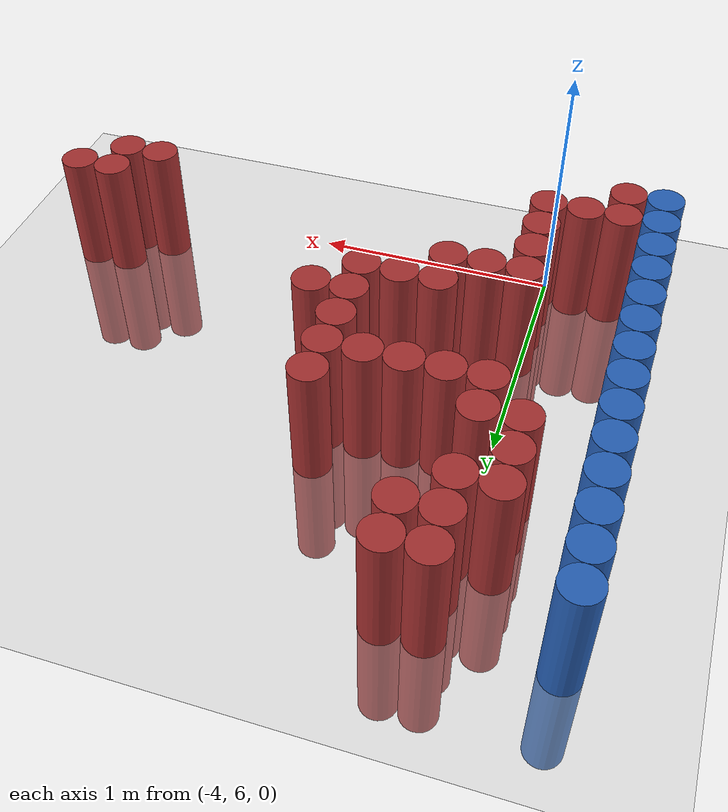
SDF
<sdf version="1.6">
 <world name="default">
  <model name="ground_plane">
   <static>1</static>
   <link name="link">
    <collision name="collision">
     <geometry><plane><normal>0 0 1</normal><size>100 100</size></plane></geometry>
     <surface><friction><ode><mu>100</mu><mu2>50</mu2></ode></friction></surface>
    </collision>
    <visual name="visual">
     <cast_shadows>0</cast_shadows>
     <geometry><plane><normal>0 0 1</normal><size>100 100</size></plane></geometry>
     <material>
      <script><uri>file://media/materials/scripts/gazebo.material</uri><name>Gazebo/Grey</name></script>
     </material>
    </visual>
   </link>
  </model>
  <model name="unit_cylinder_101">
   <static>1</static>
   <pose>-4.425000 5.925000 0.000000 0.000000 0.000000 0.000000</pose>
   <link name="link">
    <inertial>
     <mass>1</mass>
     <inertia><ixx>0.145833</ixx><ixy>0</ixy><ixz>0</ixz><iyy>0.145833</iyy><iyz>0</iyz><izz>0.125</izz></inertia>
    </inertial>
    <collision name="collision">
     <geometry><cylinder><radius>0.075000</radius><length>1</length></cylinder></geometry>
    </collision>
    <visual name="visual">
     <geometry><cylinder><radius>0.075000</radius><length>1</length></cylinder></geometry>
     <material>
      <ambient>0.152000 0.379000 0.720000 1</ambient>
      <diffuse>0.152000 0.379000 0.720000 1</diffuse>
     </material>
     <material>
      <script><name>Gazebo/Grey</name><uri>file://media/materials/scripts/gazebo.material</uri></script>
     </material>
    </visual>
   </link>
  </model>
  <model name="unit_cylinder_102">
   <static>1</static>
   <pose>-4.425000 6.075000 0.000000 0.000000 0.000000 0.000000</pose>
   <link name="link">
    <inertial>
     <mass>1</mass>
     <inertia><ixx>0.145833</ixx><ixy>0</ixy><ixz>0</ixz><iyy>0.145833</iyy><iyz>0</iyz><izz>0.125</izz></inertia>
    </inertial>
    <collision name="collision">
     <geometry><cylinder><radius>0.075000</radius><length>1</length></cylinder></geometry>
    </collision>
    <visual name="visual">
     <geometry><cylinder><radius>0.075000</radius><length>1</length></cylinder></geometry>
     <material>
      <ambient>0.152000 0.379000 0.720000 1</ambient>
      <diffuse>0.152000 0.379000 0.720000 1</diffuse>
     </material>
     <material>
      <script><name>Gazebo/Grey</name><uri>file://media/materials/scripts/gazebo.material</uri></script>
     </material>
    </visual>
   </link>
  </model>
  <model name="unit_cylinder_103">
   <static>1</static>
   <pose>-4.425000 6.225000 0.000000 0.000000 0.000000 0.000000</pose>
   <link name="link">
    <inertial>
     <mass>1</mass>
     <inertia><ixx>0.145833</ixx><ixy>0</ixy><ixz>0</ixz><iyy>0.145833</iyy><iyz>0</iyz><izz>0.125</izz></inertia>
    </inertial>
    <collision name="collision">
     <geometry><cylinder><radius>0.075000</radius><length>1</length></cylinder></geometry>
    </collision>
    <visual name="visual">
     <geometry><cylinder><radius>0.075000</radius><length>1</length></cylinder></geometry>
     <material>
      <ambient>0.152000 0.379000 0.720000 1</ambient>
      <diffuse>0.152000 0.379000 0.720000 1</diffuse>
     </material>
     <material>
      <script><name>Gazebo/Grey</name><uri>file://media/materials/scripts/gazebo.material</uri></script>
     </material>
    </visual>
   </link>
  </model>
  <model name="unit_cylinder_104">
   <static>1</static>
   <pose>-4.425000 6.375000 0.000000 0.000000 0.000000 0.000000</pose>
   <link name="link">
    <inertial>
     <mass>1</mass>
     <inertia><ixx>0.145833</ixx><ixy>0</ixy><ixz>0</ixz><iyy>0.145833</iyy><iyz>0</iyz><izz>0.125</izz></inertia>
    </inertial>
    <collision name="collision">
     <geometry><cylinder><radius>0.075000</radius><length>1</length></cylinder></geometry>
    </collision>
    <visual name="visual">
     <geometry><cylinder><radius>0.075000</radius><length>1</length></cylinder></geometry>
     <material>
      <ambient>0.152000 0.379000 0.720000 1</ambient>
      <diffuse>0.152000 0.379000 0.720000 1</diffuse>
     </material>
     <material>
      <script><name>Gazebo/Grey</name><uri>file://media/materials/scripts/gazebo.material</uri></script>
     </material>
    </visual>
   </link>
  </model>
  <model name="unit_cylinder_105">
   <static>1</static>
   <pose>-4.425000 6.525000 0.000000 0.000000 0.000000 0.000000</pose>
   <link name="link">
    <inertial>
     <mass>1</mass>
     <inertia><ixx>0.145833</ixx><ixy>0</ixy><ixz>0</ixz><iyy>0.145833</iyy><iyz>0</iyz><izz>0.125</izz></inertia>
    </inertial>
    <collision name="collision">
     <geometry><cylinder><radius>0.075000</radius><length>1</length></cylinder></geometry>
    </collision>
    <visual name="visual">
     <geometry><cylinder><radius>0.075000</radius><length>1</length></cylinder></geometry>
     <material>
      <ambient>0.152000 0.379000 0.720000 1</ambient>
      <diffuse>0.152000 0.379000 0.720000 1</diffuse>
     </material>
     <material>
      <script><name>Gazebo/Grey</name><uri>file://media/materials/scripts/gazebo.material</uri></script>
     </material>
    </visual>
   </link>
  </model>
  <model name="unit_cylinder_106">
   <static>1</static>
   <pose>-4.425000 6.675000 0.000000 0.000000 0.000000 0.000000</pose>
   <link name="link">
    <inertial>
     <mass>1</mass>
     <inertia><ixx>0.145833</ixx><ixy>0</ixy><ixz>0</ixz><iyy>0.145833</iyy><iyz>0</iyz><izz>0.125</izz></inertia>
    </inertial>
    <collision name="collision">
     <geometry><cylinder><radius>0.075000</radius><length>1</length></cylinder></geometry>
    </collision>
    <visual name="visual">
     <geometry><cylinder><radius>0.075000</radius><length>1</length></cylinder></geometry>
     <material>
      <ambient>0.152000 0.379000 0.720000 1</ambient>
      <diffuse>0.152000 0.379000 0.720000 1</diffuse>
     </material>
     <material>
      <script><name>Gazebo/Grey</name><uri>file://media/materials/scripts/gazebo.material</uri></script>
     </material>
    </visual>
   </link>
  </model>
  <model name="unit_cylinder_107">
   <static>1</static>
   <pose>-4.425000 6.825000 0.000000 0.000000 0.000000 0.000000</pose>
   <link name="link">
    <inertial>
     <mass>1</mass>
     <inertia><ixx>0.145833</ixx><ixy>0</ixy><ixz>0</ixz><iyy>0.145833</iyy><iyz>0</iyz><izz>0.125</izz></inertia>
    </inertial>
    <collision name="collision">
     <geometry><cylinder><radius>0.075000</radius><length>1</length></cylinder></geometry>
    </collision>
    <visual name="visual">
     <geometry><cylinder><radius>0.075000</radius><length>1</length></cylinder></geometry>
     <material>
      <ambient>0.152000 0.379000 0.720000 1</ambient>
      <diffuse>0.152000 0.379000 0.720000 1</diffuse>
     </material>
     <material>
      <script><name>Gazebo/Grey</name><uri>file://media/materials/scripts/gazebo.material</uri></script>
     </material>
    </visual>
   </link>
  </model>
  <model name="unit_cylinder_108">
   <static>1</static>
   <pose>-4.425000 6.975000 0.000000 0.000000 0.000000 0.000000</pose>
   <link name="link">
    <inertial>
     <mass>1</mass>
     <inertia><ixx>0.145833</ixx><ixy>0</ixy><ixz>0</ixz><iyy>0.145833</iyy><iyz>0</iyz><izz>0.125</izz></inertia>
    </inertial>
    <collision name="collision">
     <geometry><cylinder><radius>0.075000</radius><length>1</length></cylinder></geometry>
    </collision>
    <visual name="visual">
     <geometry><cylinder><radius>0.075000</radius><length>1</length></cylinder></geometry>
     <material>
      <ambient>0.152000 0.379000 0.720000 1</ambient>
      <diffuse>0.152000 0.379000 0.720000 1</diffuse>
     </material>
     <material>
      <script><name>Gazebo/Grey</name><uri>file://media/materials/scripts/gazebo.material</uri></script>
     </material>
    </visual>
   </link>
  </model>
  <model name="unit_cylinder_109">
   <static>1</static>
   <pose>-4.425000 7.125000 0.000000 0.000000 0.000000 0.000000</pose>
   <link name="link">
    <inertial>
     <mass>1</mass>
     <inertia><ixx>0.145833</ixx><ixy>0</ixy><ixz>0</ixz><iyy>0.145833</iyy><iyz>0</iyz><izz>0.125</izz></inertia>
    </inertial>
    <collision name="collision">
     <geometry><cylinder><radius>0.075000</radius><length>1</length></cylinder></geometry>
    </collision>
    <visual name="visual">
     <geometry><cylinder><radius>0.075000</radius><length>1</length></cylinder></geometry>
     <material>
      <ambient>0.152000 0.379000 0.720000 1</ambient>
      <diffuse>0.152000 0.379000 0.720000 1</diffuse>
     </material>
     <material>
      <script><name>Gazebo/Grey</name><uri>file://media/materials/scripts/gazebo.material</uri></script>
     </material>
    </visual>
   </link>
  </model>
  <model name="unit_cylinder_110">
   <static>1</static>
   <pose>-4.425000 7.275000 0.000000 0.000000 0.000000 0.000000</pose>
   <link name="link">
    <inertial>
     <mass>1</mass>
     <inertia><ixx>0.145833</ixx><ixy>0</ixy><ixz>0</ixz><iyy>0.145833</iyy><iyz>0</iyz><izz>0.125</izz></inertia>
    </inertial>
    <collision name="collision">
     <geometry><cylinder><radius>0.075000</radius><length>1</length></cylinder></geometry>
    </collision>
    <visual name="visual">
     <geometry><cylinder><radius>0.075000</radius><length>1</length></cylinder></geometry>
     <material>
      <ambient>0.152000 0.379000 0.720000 1</ambient>
      <diffuse>0.152000 0.379000 0.720000 1</diffuse>
     </material>
     <material>
      <script><name>Gazebo/Grey</name><uri>file://media/materials/scripts/gazebo.material</uri></script>
     </material>
    </visual>
   </link>
  </model>
  <model name="unit_cylinder_111">
   <static>1</static>
   <pose>-4.425000 7.425000 0.000000 0.000000 0.000000 0.000000</pose>
   <link name="link">
    <inertial>
     <mass>1</mass>
     <inertia><ixx>0.145833</ixx><ixy>0</ixy><ixz>0</ixz><iyy>0.145833</iyy><iyz>0</iyz><izz>0.125</izz></inertia>
    </inertial>
    <collision name="collision">
     <geometry><cylinder><radius>0.075000</radius><length>1</length></cylinder></geometry>
    </collision>
    <visual name="visual">
     <geometry><cylinder><radius>0.075000</radius><length>1</length></cylinder></geometry>
     <material>
      <ambient>0.152000 0.379000 0.720000 1</ambient>
      <diffuse>0.152000 0.379000 0.720000 1</diffuse>
     </material>
     <material>
      <script><name>Gazebo/Grey</name><uri>file://media/materials/scripts/gazebo.material</uri></script>
     </material>
    </visual>
   </link>
  </model>
  <model name="unit_cylinder_112">
   <static>1</static>
   <pose>-4.425000 7.575000 0.000000 0.000000 0.000000 0.000000</pose>
   <link name="link">
    <inertial>
     <mass>1</mass>
     <inertia><ixx>0.145833</ixx><ixy>0</ixy><ixz>0</ixz><iyy>0.145833</iyy><iyz>0</iyz><izz>0.125</izz></inertia>
    </inertial>
    <collision name="collision">
     <geometry><cylinder><radius>0.075000</radius><length>1</length></cylinder></geometry>
    </collision>
    <visual name="visual">
     <geometry><cylinder><radius>0.075000</radius><length>1</length></cylinder></geometry>
     <material>
      <ambient>0.152000 0.379000 0.720000 1</ambient>
      <diffuse>0.152000 0.379000 0.720000 1</diffuse>
     </material>
     <material>
      <script><name>Gazebo/Grey</name><uri>file://media/materials/scripts/gazebo.material</uri></script>
     </material>
    </visual>
   </link>
  </model>
  <model name="unit_cylinder_113">
   <static>1</static>
   <pose>-4.425000 7.725000 0.000000 0.000000 0.000000 0.000000</pose>
   <link name="link">
    <inertial>
     <mass>1</mass>
     <inertia><ixx>0.145833</ixx><ixy>0</ixy><ixz>0</ixz><iyy>0.145833</iyy><iyz>0</iyz><izz>0.125</izz></inertia>
    </inertial>
    <collision name="collision">
     <geometry><cylinder><radius>0.075000</radius><length>1</length></cylinder></geometry>
    </collision>
    <visual name="visual">
     <geometry><cylinder><radius>0.075000</radius><length>1</length></cylinder></geometry>
     <material>
      <ambient>0.152000 0.379000 0.720000 1</ambient>
      <diffuse>0.152000 0.379000 0.720000 1</diffuse>
     </material>
     <material>
      <script><name>Gazebo/Grey</name><uri>file://media/materials/scripts/gazebo.material</uri></script>
     </material>
    </visual>
   </link>
  </model>
  <model name="unit_cylinder_114">
   <static>1</static>
   <pose>-4.425000 7.875000 0.000000 0.000000 0.000000 0.000000</pose>
   <link name="link">
    <inertial>
     <mass>1</mass>
     <inertia><ixx>0.145833</ixx><ixy>0</ixy><ixz>0</ixz><iyy>0.145833</iyy><iyz>0</iyz><izz>0.125</izz></inertia>
    </inertial>
    <collision name="collision">
     <geometry><cylinder><radius>0.075000</radius><length>1</length></cylinder></geometry>
    </collision>
    <visual name="visual">
     <geometry><cylinder><radius>0.075000</radius><length>1</length></cylinder></geometry>
     <material>
      <ambient>0.152000 0.379000 0.720000 1</ambient>
      <diffuse>0.152000 0.379000 0.720000 1</diffuse>
     </material>
     <material>
      <script><name>Gazebo/Grey</name><uri>file://media/materials/scripts/gazebo.material</uri></script>
     </material>
    </visual>
   </link>
  </model>
  <model name="unit_cylinder_129">
   <static>1</static>
   <pose>-4.275000 5.925000 0.000000 0.000000 0.000000 0.000000</pose>
   <link name="link">
    <inertial>
     <mass>1</mass>
     <inertia><ixx>0.145833</ixx><ixy>0</ixy><ixz>0</ixz><iyy>0.145833</iyy><iyz>0</iyz><izz>0.125</izz></inertia>
    </inertial>
    <collision name="collision">
     <geometry><cylinder><radius>0.075000</radius><length>1</length></cylinder></geometry>
    </collision>
    <visual name="visual">
     <geometry><cylinder><radius>0.075000</radius><length>1</length></cylinder></geometry>
     <material>
      <ambient>0.648000 0.192000 0.192000 1</ambient>
      <diffuse>0.648000 0.192000 0.192000 1</diffuse>
     </material>
     <material>
      <script><name>Gazebo/Grey</name><uri>file://media/materials/scripts/gazebo.material</uri></script>
     </material>
    </visual>
   </link>
  </model>
  <model name="unit_cylinder_130">
   <static>1</static>
   <pose>-4.275000 6.075000 0.000000 0.000000 0.000000 0.000000</pose>
   <link name="link">
    <inertial>
     <mass>1</mass>
     <inertia><ixx>0.145833</ixx><ixy>0</ixy><ixz>0</ixz><iyy>0.145833</iyy><iyz>0</iyz><izz>0.125</izz></inertia>
    </inertial>
    <collision name="collision">
     <geometry><cylinder><radius>0.075000</radius><length>1</length></cylinder></geometry>
    </collision>
    <visual name="visual">
     <geometry><cylinder><radius>0.075000</radius><length>1</length></cylinder></geometry>
     <material>
      <ambient>0.648000 0.192000 0.192000 1</ambient>
      <diffuse>0.648000 0.192000 0.192000 1</diffuse>
     </material>
     <material>
      <script><name>Gazebo/Grey</name><uri>file://media/materials/scripts/gazebo.material</uri></script>
     </material>
    </visual>
   </link>
  </model>
  <model name="unit_cylinder_136">
   <static>1</static>
   <pose>-4.125000 6.075000 0.000000 0.000000 0.000000 0.000000</pose>
   <link name="link">
    <inertial>
     <mass>1</mass>
     <inertia><ixx>0.145833</ixx><ixy>0</ixy><ixz>0</ixz><iyy>0.145833</iyy><iyz>0</iyz><izz>0.125</izz></inertia>
    </inertial>
    <collision name="collision">
     <geometry><cylinder><radius>0.075000</radius><length>1</length></cylinder></geometry>
    </collision>
    <visual name="visual">
     <geometry><cylinder><radius>0.075000</radius><length>1</length></cylinder></geometry>
     <material>
      <ambient>0.648000 0.192000 0.192000 1</ambient>
      <diffuse>0.648000 0.192000 0.192000 1</diffuse>
     </material>
     <material>
      <script><name>Gazebo/Grey</name><uri>file://media/materials/scripts/gazebo.material</uri></script>
     </material>
    </visual>
   </link>
  </model>
  <model name="unit_cylinder_137">
   <static>1</static>
   <pose>-4.125000 7.275000 0.000000 0.000000 0.000000 0.000000</pose>
   <link name="link">
    <inertial>
     <mass>1</mass>
     <inertia><ixx>0.145833</ixx><ixy>0</ixy><ixz>0</ixz><iyy>0.145833</iyy><iyz>0</iyz><izz>0.125</izz></inertia>
    </inertial>
    <collision name="collision">
     <geometry><cylinder><radius>0.075000</radius><length>1</length></cylinder></geometry>
    </collision>
    <visual name="visual">
     <geometry><cylinder><radius>0.075000</radius><length>1</length></cylinder></geometry>
     <material>
      <ambient>0.648000 0.192000 0.192000 1</ambient>
      <diffuse>0.648000 0.192000 0.192000 1</diffuse>
     </material>
     <material>
      <script><name>Gazebo/Grey</name><uri>file://media/materials/scripts/gazebo.material</uri></script>
     </material>
    </visual>
   </link>
  </model>
  <model name="unit_cylinder_138">
   <static>1</static>
   <pose>-4.125000 7.425000 0.000000 0.000000 0.000000 0.000000</pose>
   <link name="link">
    <inertial>
     <mass>1</mass>
     <inertia><ixx>0.145833</ixx><ixy>0</ixy><ixz>0</ixz><iyy>0.145833</iyy><iyz>0</iyz><izz>0.125</izz></inertia>
    </inertial>
    <collision name="collision">
     <geometry><cylinder><radius>0.075000</radius><length>1</length></cylinder></geometry>
    </collision>
    <visual name="visual">
     <geometry><cylinder><radius>0.075000</radius><length>1</length></cylinder></geometry>
     <material>
      <ambient>0.648000 0.192000 0.192000 1</ambient>
      <diffuse>0.648000 0.192000 0.192000 1</diffuse>
     </material>
     <material>
      <script><name>Gazebo/Grey</name><uri>file://media/materials/scripts/gazebo.material</uri></script>
     </material>
    </visual>
   </link>
  </model>
  <model name="unit_cylinder_139">
   <static>1</static>
   <pose>-4.125000 7.575000 0.000000 0.000000 0.000000 0.000000</pose>
   <link name="link">
    <inertial>
     <mass>1</mass>
     <inertia><ixx>0.145833</ixx><ixy>0</ixy><ixz>0</ixz><iyy>0.145833</iyy><iyz>0</iyz><izz>0.125</izz></inertia>
    </inertial>
    <collision name="collision">
     <geometry><cylinder><radius>0.075000</radius><length>1</length></cylinder></geometry>
    </collision>
    <visual name="visual">
     <geometry><cylinder><radius>0.075000</radius><length>1</length></cylinder></geometry>
     <material>
      <ambient>0.648000 0.192000 0.192000 1</ambient>
      <diffuse>0.648000 0.192000 0.192000 1</diffuse>
     </material>
     <material>
      <script><name>Gazebo/Grey</name><uri>file://media/materials/scripts/gazebo.material</uri></script>
     </material>
    </visual>
   </link>
  </model>
  <model name="unit_cylinder_144">
   <static>1</static>
   <pose>-3.975000 6.075000 0.000000 0.000000 0.000000 0.000000</pose>
   <link name="link">
    <inertial>
     <mass>1</mass>
     <inertia><ixx>0.145833</ixx><ixy>0</ixy><ixz>0</ixz><iyy>0.145833</iyy><iyz>0</iyz><izz>0.125</izz></inertia>
    </inertial>
    <collision name="collision">
     <geometry><cylinder><radius>0.075000</radius><length>1</length></cylinder></geometry>
    </collision>
    <visual name="visual">
     <geometry><cylinder><radius>0.075000</radius><length>1</length></cylinder></geometry>
     <material>
      <ambient>0.648000 0.192000 0.192000 1</ambient>
      <diffuse>0.648000 0.192000 0.192000 1</diffuse>
     </material>
     <material>
      <script><name>Gazebo/Grey</name><uri>file://media/materials/scripts/gazebo.material</uri></script>
     </material>
    </visual>
   </link>
  </model>
  <model name="unit_cylinder_145">
   <static>1</static>
   <pose>-3.975000 6.225000 0.000000 0.000000 0.000000 0.000000</pose>
   <link name="link">
    <inertial>
     <mass>1</mass>
     <inertia><ixx>0.145833</ixx><ixy>0</ixy><ixz>0</ixz><iyy>0.145833</iyy><iyz>0</iyz><izz>0.125</izz></inertia>
    </inertial>
    <collision name="collision">
     <geometry><cylinder><radius>0.075000</radius><length>1</length></cylinder></geometry>
    </collision>
    <visual name="visual">
     <geometry><cylinder><radius>0.075000</radius><length>1</length></cylinder></geometry>
     <material>
      <ambient>0.648000 0.192000 0.192000 1</ambient>
      <diffuse>0.648000 0.192000 0.192000 1</diffuse>
     </material>
     <material>
      <script><name>Gazebo/Grey</name><uri>file://media/materials/scripts/gazebo.material</uri></script>
     </material>
    </visual>
   </link>
  </model>
  <model name="unit_cylinder_146">
   <static>1</static>
   <pose>-3.975000 6.375000 0.000000 0.000000 0.000000 0.000000</pose>
   <link name="link">
    <inertial>
     <mass>1</mass>
     <inertia><ixx>0.145833</ixx><ixy>0</ixy><ixz>0</ixz><iyy>0.145833</iyy><iyz>0</iyz><izz>0.125</izz></inertia>
    </inertial>
    <collision name="collision">
     <geometry><cylinder><radius>0.075000</radius><length>1</length></cylinder></geometry>
    </collision>
    <visual name="visual">
     <geometry><cylinder><radius>0.075000</radius><length>1</length></cylinder></geometry>
     <material>
      <ambient>0.648000 0.192000 0.192000 1</ambient>
      <diffuse>0.648000 0.192000 0.192000 1</diffuse>
     </material>
     <material>
      <script><name>Gazebo/Grey</name><uri>file://media/materials/scripts/gazebo.material</uri></script>
     </material>
    </visual>
   </link>
  </model>
  <model name="unit_cylinder_147">
   <static>1</static>
   <pose>-3.975000 6.525000 0.000000 0.000000 0.000000 0.000000</pose>
   <link name="link">
    <inertial>
     <mass>1</mass>
     <inertia><ixx>0.145833</ixx><ixy>0</ixy><ixz>0</ixz><iyy>0.145833</iyy><iyz>0</iyz><izz>0.125</izz></inertia>
    </inertial>
    <collision name="collision">
     <geometry><cylinder><radius>0.075000</radius><length>1</length></cylinder></geometry>
    </collision>
    <visual name="visual">
     <geometry><cylinder><radius>0.075000</radius><length>1</length></cylinder></geometry>
     <material>
      <ambient>0.648000 0.192000 0.192000 1</ambient>
      <diffuse>0.648000 0.192000 0.192000 1</diffuse>
     </material>
     <material>
      <script><name>Gazebo/Grey</name><uri>file://media/materials/scripts/gazebo.material</uri></script>
     </material>
    </visual>
   </link>
  </model>
  <model name="unit_cylinder_148">
   <static>1</static>
   <pose>-3.975000 7.125000 0.000000 0.000000 0.000000 0.000000</pose>
   <link name="link">
    <inertial>
     <mass>1</mass>
     <inertia><ixx>0.145833</ixx><ixy>0</ixy><ixz>0</ixz><iyy>0.145833</iyy><iyz>0</iyz><izz>0.125</izz></inertia>
    </inertial>
    <collision name="collision">
     <geometry><cylinder><radius>0.075000</radius><length>1</length></cylinder></geometry>
    </collision>
    <visual name="visual">
     <geometry><cylinder><radius>0.075000</radius><length>1</length></cylinder></geometry>
     <material>
      <ambient>0.648000 0.192000 0.192000 1</ambient>
      <diffuse>0.648000 0.192000 0.192000 1</diffuse>
     </material>
     <material>
      <script><name>Gazebo/Grey</name><uri>file://media/materials/scripts/gazebo.material</uri></script>
     </material>
    </visual>
   </link>
  </model>
  <model name="unit_cylinder_149">
   <static>1</static>
   <pose>-3.975000 7.275000 0.000000 0.000000 0.000000 0.000000</pose>
   <link name="link">
    <inertial>
     <mass>1</mass>
     <inertia><ixx>0.145833</ixx><ixy>0</ixy><ixz>0</ixz><iyy>0.145833</iyy><iyz>0</iyz><izz>0.125</izz></inertia>
    </inertial>
    <collision name="collision">
     <geometry><cylinder><radius>0.075000</radius><length>1</length></cylinder></geometry>
    </collision>
    <visual name="visual">
     <geometry><cylinder><radius>0.075000</radius><length>1</length></cylinder></geometry>
     <material>
      <ambient>0.648000 0.192000 0.192000 1</ambient>
      <diffuse>0.648000 0.192000 0.192000 1</diffuse>
     </material>
     <material>
      <script><name>Gazebo/Grey</name><uri>file://media/materials/scripts/gazebo.material</uri></script>
     </material>
    </visual>
   </link>
  </model>
  <model name="unit_cylinder_150">
   <static>1</static>
   <pose>-3.975000 7.575000 0.000000 0.000000 0.000000 0.000000</pose>
   <link name="link">
    <inertial>
     <mass>1</mass>
     <inertia><ixx>0.145833</ixx><ixy>0</ixy><ixz>0</ixz><iyy>0.145833</iyy><iyz>0</iyz><izz>0.125</izz></inertia>
    </inertial>
    <collision name="collision">
     <geometry><cylinder><radius>0.075000</radius><length>1</length></cylinder></geometry>
    </collision>
    <visual name="visual">
     <geometry><cylinder><radius>0.075000</radius><length>1</length></cylinder></geometry>
     <material>
      <ambient>0.648000 0.192000 0.192000 1</ambient>
      <diffuse>0.648000 0.192000 0.192000 1</diffuse>
     </material>
     <material>
      <script><name>Gazebo/Grey</name><uri>file://media/materials/scripts/gazebo.material</uri></script>
     </material>
    </visual>
   </link>
  </model>
  <model name="unit_cylinder_151">
   <static>1</static>
   <pose>-3.975000 7.725000 0.000000 0.000000 0.000000 0.000000</pose>
   <link name="link">
    <inertial>
     <mass>1</mass>
     <inertia><ixx>0.145833</ixx><ixy>0</ixy><ixz>0</ixz><iyy>0.145833</iyy><iyz>0</iyz><izz>0.125</izz></inertia>
    </inertial>
    <collision name="collision">
     <geometry><cylinder><radius>0.075000</radius><length>1</length></cylinder></geometry>
    </collision>
    <visual name="visual">
     <geometry><cylinder><radius>0.075000</radius><length>1</length></cylinder></geometry>
     <material>
      <ambient>0.648000 0.192000 0.192000 1</ambient>
      <diffuse>0.648000 0.192000 0.192000 1</diffuse>
     </material>
     <material>
      <script><name>Gazebo/Grey</name><uri>file://media/materials/scripts/gazebo.material</uri></script>
     </material>
    </visual>
   </link>
  </model>
  <model name="unit_cylinder_152">
   <static>1</static>
   <pose>-3.975000 7.875000 0.000000 0.000000 0.000000 0.000000</pose>
   <link name="link">
    <inertial>
     <mass>1</mass>
     <inertia><ixx>0.145833</ixx><ixy>0</ixy><ixz>0</ixz><iyy>0.145833</iyy><iyz>0</iyz><izz>0.125</izz></inertia>
    </inertial>
    <collision name="collision">
     <geometry><cylinder><radius>0.075000</radius><length>1</length></cylinder></geometry>
    </collision>
    <visual name="visual">
     <geometry><cylinder><radius>0.075000</radius><length>1</length></cylinder></geometry>
     <material>
      <ambient>0.648000 0.192000 0.192000 1</ambient>
      <diffuse>0.648000 0.192000 0.192000 1</diffuse>
     </material>
     <material>
      <script><name>Gazebo/Grey</name><uri>file://media/materials/scripts/gazebo.material</uri></script>
     </material>
    </visual>
   </link>
  </model>
  <model name="unit_cylinder_161">
   <static>1</static>
   <pose>-3.825000 6.525000 0.000000 0.000000 0.000000 0.000000</pose>
   <link name="link">
    <inertial>
     <mass>1</mass>
     <inertia><ixx>0.145833</ixx><ixy>0</ixy><ixz>0</ixz><iyy>0.145833</iyy><iyz>0</iyz><izz>0.125</izz></inertia>
    </inertial>
    <collision name="collision">
     <geometry><cylinder><radius>0.075000</radius><length>1</length></cylinder></geometry>
    </collision>
    <visual name="visual">
     <geometry><cylinder><radius>0.075000</radius><length>1</length></cylinder></geometry>
     <material>
      <ambient>0.648000 0.192000 0.192000 1</ambient>
      <diffuse>0.648000 0.192000 0.192000 1</diffuse>
     </material>
     <material>
      <script><name>Gazebo/Grey</name><uri>file://media/materials/scripts/gazebo.material</uri></script>
     </material>
    </visual>
   </link>
  </model>
  <model name="unit_cylinder_162">
   <static>1</static>
   <pose>-3.825000 7.125000 0.000000 0.000000 0.000000 0.000000</pose>
   <link name="link">
    <inertial>
     <mass>1</mass>
     <inertia><ixx>0.145833</ixx><ixy>0</ixy><ixz>0</ixz><iyy>0.145833</iyy><iyz>0</iyz><izz>0.125</izz></inertia>
    </inertial>
    <collision name="collision">
     <geometry><cylinder><radius>0.075000</radius><length>1</length></cylinder></geometry>
    </collision>
    <visual name="visual">
     <geometry><cylinder><radius>0.075000</radius><length>1</length></cylinder></geometry>
     <material>
      <ambient>0.648000 0.192000 0.192000 1</ambient>
      <diffuse>0.648000 0.192000 0.192000 1</diffuse>
     </material>
     <material>
      <script><name>Gazebo/Grey</name><uri>file://media/materials/scripts/gazebo.material</uri></script>
     </material>
    </visual>
   </link>
  </model>
  <model name="unit_cylinder_163">
   <static>1</static>
   <pose>-3.825000 7.725000 0.000000 0.000000 0.000000 0.000000</pose>
   <link name="link">
    <inertial>
     <mass>1</mass>
     <inertia><ixx>0.145833</ixx><ixy>0</ixy><ixz>0</ixz><iyy>0.145833</iyy><iyz>0</iyz><izz>0.125</izz></inertia>
    </inertial>
    <collision name="collision">
     <geometry><cylinder><radius>0.075000</radius><length>1</length></cylinder></geometry>
    </collision>
    <visual name="visual">
     <geometry><cylinder><radius>0.075000</radius><length>1</length></cylinder></geometry>
     <material>
      <ambient>0.648000 0.192000 0.192000 1</ambient>
      <diffuse>0.648000 0.192000 0.192000 1</diffuse>
     </material>
     <material>
      <script><name>Gazebo/Grey</name><uri>file://media/materials/scripts/gazebo.material</uri></script>
     </material>
    </visual>
   </link>
  </model>
  <model name="unit_cylinder_164">
   <static>1</static>
   <pose>-3.825000 7.875000 0.000000 0.000000 0.000000 0.000000</pose>
   <link name="link">
    <inertial>
     <mass>1</mass>
     <inertia><ixx>0.145833</ixx><ixy>0</ixy><ixz>0</ixz><iyy>0.145833</iyy><iyz>0</iyz><izz>0.125</izz></inertia>
    </inertial>
    <collision name="collision">
     <geometry><cylinder><radius>0.075000</radius><length>1</length></cylinder></geometry>
    </collision>
    <visual name="visual">
     <geometry><cylinder><radius>0.075000</radius><length>1</length></cylinder></geometry>
     <material>
      <ambient>0.648000 0.192000 0.192000 1</ambient>
      <diffuse>0.648000 0.192000 0.192000 1</diffuse>
     </material>
     <material>
      <script><name>Gazebo/Grey</name><uri>file://media/materials/scripts/gazebo.material</uri></script>
     </material>
    </visual>
   </link>
  </model>
  <model name="unit_cylinder_172">
   <static>1</static>
   <pose>-3.675000 6.525000 0.000000 0.000000 0.000000 0.000000</pose>
   <link name="link">
    <inertial>
     <mass>1</mass>
     <inertia><ixx>0.145833</ixx><ixy>0</ixy><ixz>0</ixz><iyy>0.145833</iyy><iyz>0</iyz><izz>0.125</izz></inertia>
    </inertial>
    <collision name="collision">
     <geometry><cylinder><radius>0.075000</radius><length>1</length></cylinder></geometry>
    </collision>
    <visual name="visual">
     <geometry><cylinder><radius>0.075000</radius><length>1</length></cylinder></geometry>
     <material>
      <ambient>0.648000 0.192000 0.192000 1</ambient>
      <diffuse>0.648000 0.192000 0.192000 1</diffuse>
     </material>
     <material>
      <script><name>Gazebo/Grey</name><uri>file://media/materials/scripts/gazebo.material</uri></script>
     </material>
    </visual>
   </link>
  </model>
  <model name="unit_cylinder_173">
   <static>1</static>
   <pose>-3.675000 6.675000 0.000000 0.000000 0.000000 0.000000</pose>
   <link name="link">
    <inertial>
     <mass>1</mass>
     <inertia><ixx>0.145833</ixx><ixy>0</ixy><ixz>0</ixz><iyy>0.145833</iyy><iyz>0</iyz><izz>0.125</izz></inertia>
    </inertial>
    <collision name="collision">
     <geometry><cylinder><radius>0.075000</radius><length>1</length></cylinder></geometry>
    </collision>
    <visual name="visual">
     <geometry><cylinder><radius>0.075000</radius><length>1</length></cylinder></geometry>
     <material>
      <ambient>0.648000 0.192000 0.192000 1</ambient>
      <diffuse>0.648000 0.192000 0.192000 1</diffuse>
     </material>
     <material>
      <script><name>Gazebo/Grey</name><uri>file://media/materials/scripts/gazebo.material</uri></script>
     </material>
    </visual>
   </link>
  </model>
  <model name="unit_cylinder_174">
   <static>1</static>
   <pose>-3.675000 7.125000 0.000000 0.000000 0.000000 0.000000</pose>
   <link name="link">
    <inertial>
     <mass>1</mass>
     <inertia><ixx>0.145833</ixx><ixy>0</ixy><ixz>0</ixz><iyy>0.145833</iyy><iyz>0</iyz><izz>0.125</izz></inertia>
    </inertial>
    <collision name="collision">
     <geometry><cylinder><radius>0.075000</radius><length>1</length></cylinder></geometry>
    </collision>
    <visual name="visual">
     <geometry><cylinder><radius>0.075000</radius><length>1</length></cylinder></geometry>
     <material>
      <ambient>0.648000 0.192000 0.192000 1</ambient>
      <diffuse>0.648000 0.192000 0.192000 1</diffuse>
     </material>
     <material>
      <script><name>Gazebo/Grey</name><uri>file://media/materials/scripts/gazebo.material</uri></script>
     </material>
    </visual>
   </link>
  </model>
  <model name="unit_cylinder_178">
   <static>1</static>
   <pose>-3.525000 6.675000 0.000000 0.000000 0.000000 0.000000</pose>
   <link name="link">
    <inertial>
     <mass>1</mass>
     <inertia><ixx>0.145833</ixx><ixy>0</ixy><ixz>0</ixz><iyy>0.145833</iyy><iyz>0</iyz><izz>0.125</izz></inertia>
    </inertial>
    <collision name="collision">
     <geometry><cylinder><radius>0.075000</radius><length>1</length></cylinder></geometry>
    </collision>
    <visual name="visual">
     <geometry><cylinder><radius>0.075000</radius><length>1</length></cylinder></geometry>
     <material>
      <ambient>0.648000 0.192000 0.192000 1</ambient>
      <diffuse>0.648000 0.192000 0.192000 1</diffuse>
     </material>
     <material>
      <script><name>Gazebo/Grey</name><uri>file://media/materials/scripts/gazebo.material</uri></script>
     </material>
    </visual>
   </link>
  </model>
  <model name="unit_cylinder_179">
   <static>1</static>
   <pose>-3.525000 7.125000 0.000000 0.000000 0.000000 0.000000</pose>
   <link name="link">
    <inertial>
     <mass>1</mass>
     <inertia><ixx>0.145833</ixx><ixy>0</ixy><ixz>0</ixz><iyy>0.145833</iyy><iyz>0</iyz><izz>0.125</izz></inertia>
    </inertial>
    <collision name="collision">
     <geometry><cylinder><radius>0.075000</radius><length>1</length></cylinder></geometry>
    </collision>
    <visual name="visual">
     <geometry><cylinder><radius>0.075000</radius><length>1</length></cylinder></geometry>
     <material>
      <ambient>0.648000 0.192000 0.192000 1</ambient>
      <diffuse>0.648000 0.192000 0.192000 1</diffuse>
     </material>
     <material>
      <script><name>Gazebo/Grey</name><uri>file://media/materials/scripts/gazebo.material</uri></script>
     </material>
    </visual>
   </link>
  </model>
  <model name="unit_cylinder_180">
   <static>1</static>
   <pose>-3.375000 6.675000 0.000000 0.000000 0.000000 0.000000</pose>
   <link name="link">
    <inertial>
     <mass>1</mass>
     <inertia><ixx>0.145833</ixx><ixy>0</ixy><ixz>0</ixz><iyy>0.145833</iyy><iyz>0</iyz><izz>0.125</izz></inertia>
    </inertial>
    <collision name="collision">
     <geometry><cylinder><radius>0.075000</radius><length>1</length></cylinder></geometry>
    </collision>
    <visual name="visual">
     <geometry><cylinder><radius>0.075000</radius><length>1</length></cylinder></geometry>
     <material>
      <ambient>0.648000 0.192000 0.192000 1</ambient>
      <diffuse>0.648000 0.192000 0.192000 1</diffuse>
     </material>
     <material>
      <script><name>Gazebo/Grey</name><uri>file://media/materials/scripts/gazebo.material</uri></script>
     </material>
    </visual>
   </link>
  </model>
  <model name="unit_cylinder_181">
   <static>1</static>
   <pose>-3.375000 6.825000 0.000000 0.000000 0.000000 0.000000</pose>
   <link name="link">
    <inertial>
     <mass>1</mass>
     <inertia><ixx>0.145833</ixx><ixy>0</ixy><ixz>0</ixz><iyy>0.145833</iyy><iyz>0</iyz><izz>0.125</izz></inertia>
    </inertial>
    <collision name="collision">
     <geometry><cylinder><radius>0.075000</radius><length>1</length></cylinder></geometry>
    </collision>
    <visual name="visual">
     <geometry><cylinder><radius>0.075000</radius><length>1</length></cylinder></geometry>
     <material>
      <ambient>0.648000 0.192000 0.192000 1</ambient>
      <diffuse>0.648000 0.192000 0.192000 1</diffuse>
     </material>
     <material>
      <script><name>Gazebo/Grey</name><uri>file://media/materials/scripts/gazebo.material</uri></script>
     </material>
    </visual>
   </link>
  </model>
  <model name="unit_cylinder_182">
   <static>1</static>
   <pose>-3.375000 6.975000 0.000000 0.000000 0.000000 0.000000</pose>
   <link name="link">
    <inertial>
     <mass>1</mass>
     <inertia><ixx>0.145833</ixx><ixy>0</ixy><ixz>0</ixz><iyy>0.145833</iyy><iyz>0</iyz><izz>0.125</izz></inertia>
    </inertial>
    <collision name="collision">
     <geometry><cylinder><radius>0.075000</radius><length>1</length></cylinder></geometry>
    </collision>
    <visual name="visual">
     <geometry><cylinder><radius>0.075000</radius><length>1</length></cylinder></geometry>
     <material>
      <ambient>0.648000 0.192000 0.192000 1</ambient>
      <diffuse>0.648000 0.192000 0.192000 1</diffuse>
     </material>
     <material>
      <script><name>Gazebo/Grey</name><uri>file://media/materials/scripts/gazebo.material</uri></script>
     </material>
    </visual>
   </link>
  </model>
  <model name="unit_cylinder_183">
   <static>1</static>
   <pose>-3.375000 7.125000 0.000000 0.000000 0.000000 0.000000</pose>
   <link name="link">
    <inertial>
     <mass>1</mass>
     <inertia><ixx>0.145833</ixx><ixy>0</ixy><ixz>0</ixz><iyy>0.145833</iyy><iyz>0</iyz><izz>0.125</izz></inertia>
    </inertial>
    <collision name="collision">
     <geometry><cylinder><radius>0.075000</radius><length>1</length></cylinder></geometry>
    </collision>
    <visual name="visual">
     <geometry><cylinder><radius>0.075000</radius><length>1</length></cylinder></geometry>
     <material>
      <ambient>0.648000 0.192000 0.192000 1</ambient>
      <diffuse>0.648000 0.192000 0.192000 1</diffuse>
     </material>
     <material>
      <script><name>Gazebo/Grey</name><uri>file://media/materials/scripts/gazebo.material</uri></script>
     </material>
    </visual>
   </link>
  </model>
  <model name="unit_cylinder_184">
   <static>1</static>
   <pose>-3.375000 7.275000 0.000000 0.000000 0.000000 0.000000</pose>
   <link name="link">
    <inertial>
     <mass>1</mass>
     <inertia><ixx>0.145833</ixx><ixy>0</ixy><ixz>0</ixz><iyy>0.145833</iyy><iyz>0</iyz><izz>0.125</izz></inertia>
    </inertial>
    <collision name="collision">
     <geometry><cylinder><radius>0.075000</radius><length>1</length></cylinder></geometry>
    </collision>
    <visual name="visual">
     <geometry><cylinder><radius>0.075000</radius><length>1</length></cylinder></geometry>
     <material>
      <ambient>0.648000 0.192000 0.192000 1</ambient>
      <diffuse>0.648000 0.192000 0.192000 1</diffuse>
     </material>
     <material>
      <script><name>Gazebo/Grey</name><uri>file://media/materials/scripts/gazebo.material</uri></script>
     </material>
    </visual>
   </link>
  </model>
  <model name="unit_cylinder_185">
   <static>1</static>
   <pose>-3.225000 6.825000 0.000000 0.000000 0.000000 0.000000</pose>
   <link name="link">
    <inertial>
     <mass>1</mass>
     <inertia><ixx>0.145833</ixx><ixy>0</ixy><ixz>0</ixz><iyy>0.145833</iyy><iyz>0</iyz><izz>0.125</izz></inertia>
    </inertial>
    <collision name="collision">
     <geometry><cylinder><radius>0.075000</radius><length>1</length></cylinder></geometry>
    </collision>
    <visual name="visual">
     <geometry><cylinder><radius>0.075000</radius><length>1</length></cylinder></geometry>
     <material>
      <ambient>0.648000 0.192000 0.192000 1</ambient>
      <diffuse>0.648000 0.192000 0.192000 1</diffuse>
     </material>
     <material>
      <script><name>Gazebo/Grey</name><uri>file://media/materials/scripts/gazebo.material</uri></script>
     </material>
    </visual>
   </link>
  </model>
  <model name="unit_cylinder_192">
   <static>1</static>
   <pose>-2.325000 6.225000 0.000000 0.000000 0.000000 0.000000</pose>
   <link name="link">
    <inertial>
     <mass>1</mass>
     <inertia><ixx>0.145833</ixx><ixy>0</ixy><ixz>0</ixz><iyy>0.145833</iyy><iyz>0</iyz><izz>0.125</izz></inertia>
    </inertial>
    <collision name="collision">
     <geometry><cylinder><radius>0.075000</radius><length>1</length></cylinder></geometry>
    </collision>
    <visual name="visual">
     <geometry><cylinder><radius>0.075000</radius><length>1</length></cylinder></geometry>
     <material>
      <ambient>0.648000 0.192000 0.192000 1</ambient>
      <diffuse>0.648000 0.192000 0.192000 1</diffuse>
     </material>
     <material>
      <script><name>Gazebo/Grey</name><uri>file://media/materials/scripts/gazebo.material</uri></script>
     </material>
    </visual>
   </link>
  </model>
  <model name="unit_cylinder_198">
   <static>1</static>
   <pose>-2.175000 6.225000 0.000000 0.000000 0.000000 0.000000</pose>
   <link name="link">
    <inertial>
     <mass>1</mass>
     <inertia><ixx>0.145833</ixx><ixy>0</ixy><ixz>0</ixz><iyy>0.145833</iyy><iyz>0</iyz><izz>0.125</izz></inertia>
    </inertial>
    <collision name="collision">
     <geometry><cylinder><radius>0.075000</radius><length>1</length></cylinder></geometry>
    </collision>
    <visual name="visual">
     <geometry><cylinder><radius>0.075000</radius><length>1</length></cylinder></geometry>
     <material>
      <ambient>0.648000 0.192000 0.192000 1</ambient>
      <diffuse>0.648000 0.192000 0.192000 1</diffuse>
     </material>
     <material>
      <script><name>Gazebo/Grey</name><uri>file://media/materials/scripts/gazebo.material</uri></script>
     </material>
    </visual>
   </link>
  </model>
  <model name="unit_cylinder_199">
   <static>1</static>
   <pose>-2.175000 6.375000 0.000000 0.000000 0.000000 0.000000</pose>
   <link name="link">
    <inertial>
     <mass>1</mass>
     <inertia><ixx>0.145833</ixx><ixy>0</ixy><ixz>0</ixz><iyy>0.145833</iyy><iyz>0</iyz><izz>0.125</izz></inertia>
    </inertial>
    <collision name="collision">
     <geometry><cylinder><radius>0.075000</radius><length>1</length></cylinder></geometry>
    </collision>
    <visual name="visual">
     <geometry><cylinder><radius>0.075000</radius><length>1</length></cylinder></geometry>
     <material>
      <ambient>0.648000 0.192000 0.192000 1</ambient>
      <diffuse>0.648000 0.192000 0.192000 1</diffuse>
     </material>
     <material>
      <script><name>Gazebo/Grey</name><uri>file://media/materials/scripts/gazebo.material</uri></script>
     </material>
    </visual>
   </link>
  </model>
  <model name="unit_cylinder_207">
   <static>1</static>
   <pose>-2.025000 6.375000 0.000000 0.000000 0.000000 0.000000</pose>
   <link name="link">
    <inertial>
     <mass>1</mass>
     <inertia><ixx>0.145833</ixx><ixy>0</ixy><ixz>0</ixz><iyy>0.145833</iyy><iyz>0</iyz><izz>0.125</izz></inertia>
    </inertial>
    <collision name="collision">
     <geometry><cylinder><radius>0.075000</radius><length>1</length></cylinder></geometry>
    </collision>
    <visual name="visual">
     <geometry><cylinder><radius>0.075000</radius><length>1</length></cylinder></geometry>
     <material>
      <ambient>0.648000 0.192000 0.192000 1</ambient>
      <diffuse>0.648000 0.192000 0.192000 1</diffuse>
     </material>
     <material>
      <script><name>Gazebo/Grey</name><uri>file://media/materials/scripts/gazebo.material</uri></script>
     </material>
    </visual>
   </link>
  </model>
 </world>
</sdf>
